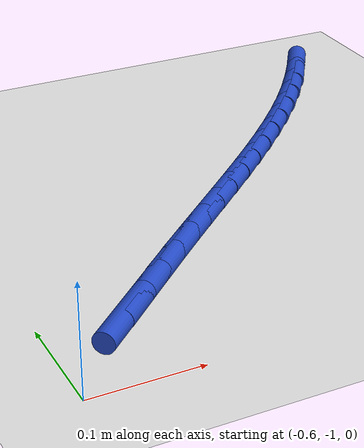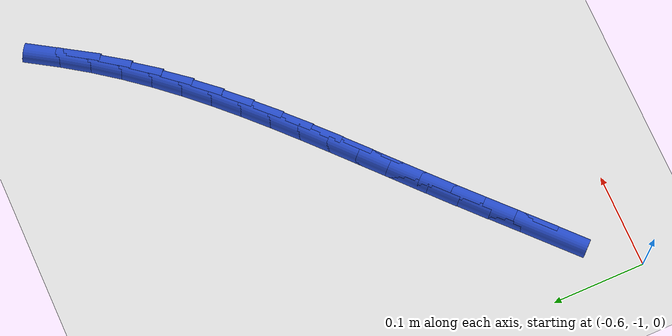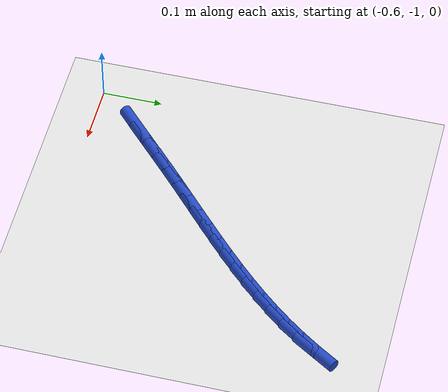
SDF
<sdf version="1.6">
 <world name="default">
  <model name="ground_plane">
   <static>1</static>
   <link name="link">
    <collision name="collision">
     <geometry><plane><normal>0 0 1</normal><size>100 100</size></plane></geometry>
     <surface><friction><ode><mu>100</mu><mu2>50</mu2></ode></friction></surface>
    </collision>
    <visual name="visual">
     <cast_shadows>0</cast_shadows>
     <geometry><plane><normal>0 0 1</normal><size>100 100</size></plane></geometry>
     <material>
      <script><uri>file://media/materials/scripts/gazebo.material</uri><name>Gazebo/WhiteGlow</name></script>
     </material>
    </visual>
   </link>
  </model>
  <model name="line">
   <link name="link_167">
    <pose>-0.5348209343322887 -0.9254664284667795 0.01 0 1.57 0.7490836819658321</pose>
    <collision name="collision">
     <geometry><cylinder><radius>0.01</radius><length>0.08</length></cylinder></geometry>
    </collision>
    <visual name="visual">
     <material>
      <script><name>Gazebo/Blue</name><uri>file://media/materials/scripts/gazebo.material</uri></script>
     </material>
     <geometry><cylinder><radius>0.01</radius><length>0.08</length></cylinder></geometry>
    </visual>
   </link>
   <link name="link_168">
    <pose>-0.5092169310591722 -0.9016576152022477 0.01 0 1.57 0.7542715134422914</pose>
    <collision name="collision">
     <geometry><cylinder><radius>0.01</radius><length>0.08</length></cylinder></geometry>
    </collision>
    <visual name="visual">
     <material>
      <script><name>Gazebo/Blue</name><uri>file://media/materials/scripts/gazebo.material</uri></script>
     </material>
     <geometry><cylinder><radius>0.01</radius><length>0.08</length></cylinder></geometry>
    </visual>
   </link>
   <link name="link_169">
    <pose>-0.4837454395667352 -0.8777244228453354 0.01 0 1.57 0.7525971178008607</pose>
    <collision name="collision">
     <geometry><cylinder><radius>0.01</radius><length>0.08</length></cylinder></geometry>
    </collision>
    <visual name="visual">
     <material>
      <script><name>Gazebo/Blue</name><uri>file://media/materials/scripts/gazebo.material</uri></script>
     </material>
     <geometry><cylinder><radius>0.01</radius><length>0.08</length></cylinder></geometry>
    </visual>
   </link>
   <link name="link_170">
    <pose>-0.45833566395932734 -0.8539292016604859 0.01 0 1.57 0.7447256982707042</pose>
    <collision name="collision">
     <geometry><cylinder><radius>0.01</radius><length>0.08</length></cylinder></geometry>
    </collision>
    <visual name="visual">
     <material>
      <script><name>Gazebo/Blue</name><uri>file://media/materials/scripts/gazebo.material</uri></script>
     </material>
     <geometry><cylinder><radius>0.01</radius><length>0.08</length></cylinder></geometry>
    </visual>
   </link>
   <link name="link_171">
    <pose>-0.43292766719529896 -0.830508292695694 0.01 0 1.57 0.7375657430360244</pose>
    <collision name="collision">
     <geometry><cylinder><radius>0.01</radius><length>0.08</length></cylinder></geometry>
    </collision>
    <visual name="visual">
     <material>
      <script><name>Gazebo/Blue</name><uri>file://media/materials/scripts/gazebo.material</uri></script>
     </material>
     <geometry><cylinder><radius>0.01</radius><length>0.08</length></cylinder></geometry>
    </visual>
   </link>
   <link name="link_172">
    <pose>-0.407561153902517 -0.8074593744522645 0.01 0 1.57 0.7349777353963726</pose>
    <collision name="collision">
     <geometry><cylinder><radius>0.01</radius><length>0.08</length></cylinder></geometry>
    </collision>
    <visual name="visual">
     <material>
      <script><name>Gazebo/Blue</name><uri>file://media/materials/scripts/gazebo.material</uri></script>
     </material>
     <geometry><cylinder><radius>0.01</radius><length>0.08</length></cylinder></geometry>
    </visual>
   </link>
   <link name="link_173">
    <pose>-0.38232939217979406 -0.7846518297651703 0.01 0 1.57 0.7371098211891665</pose>
    <collision name="collision">
     <geometry><cylinder><radius>0.01</radius><length>0.08</length></cylinder></geometry>
    </collision>
    <visual name="visual">
     <material>
      <script><name>Gazebo/Blue</name><uri>file://media/materials/scripts/gazebo.material</uri></script>
     </material>
     <geometry><cylinder><radius>0.01</radius><length>0.08</length></cylinder></geometry>
    </visual>
   </link>
   <link name="link_174">
    <pose>-0.3573261648328613 -0.7619538086391383 0.01 0 1.57 0.744060742261435</pose>
    <collision name="collision">
     <geometry><cylinder><radius>0.01</radius><length>0.08</length></cylinder></geometry>
    </collision>
    <visual name="visual">
     <material>
      <script><name>Gazebo/Blue</name><uri>file://media/materials/scripts/gazebo.material</uri></script>
     </material>
     <geometry><cylinder><radius>0.01</radius><length>0.08</length></cylinder></geometry>
    </visual>
   </link>
   <link name="link_175">
    <pose>-0.33264525466744943 -0.7392334610788942 0.01 0 1.57 0.7559135872494325</pose>
    <collision name="collision">
     <geometry><cylinder><radius>0.01</radius><length>0.08</length></cylinder></geometry>
    </collision>
    <visual name="visual">
     <material>
      <script><name>Gazebo/Blue</name><uri>file://media/materials/scripts/gazebo.material</uri></script>
     </material>
     <geometry><cylinder><radius>0.01</radius><length>0.08</length></cylinder></geometry>
    </visual>
   </link>
   <link name="link_176">
    <pose>-0.30838044448928975 -0.7163589370891641 0.01 0 1.57 0.7727297392176627</pose>
    <collision name="collision">
     <geometry><cylinder><radius>0.01</radius><length>0.08</length></cylinder></geometry>
    </collision>
    <visual name="visual">
     <material>
      <script><name>Gazebo/Blue</name><uri>file://media/materials/scripts/gazebo.material</uri></script>
     </material>
     <geometry><cylinder><radius>0.01</radius><length>0.08</length></cylinder></geometry>
    </visual>
   </link>
   <link name="link_177">
    <pose>-0.2846255171041134 -0.6931983866746743 0.01 0 1.57 0.7945391006280416</pose>
    <collision name="collision">
     <geometry><cylinder><radius>0.01</radius><length>0.08</length></cylinder></geometry>
    </collision>
    <visual name="visual">
     <material>
      <script><name>Gazebo/Blue</name><uri>file://media/materials/scripts/gazebo.material</uri></script>
     </material>
     <geometry><cylinder><radius>0.01</radius><length>0.08</length></cylinder></geometry>
    </visual>
   </link>
   <link name="link_178">
    <pose>-0.2614742553176511 -0.6696199598401508 0.01 0 1.57 0.8213266456626248</pose>
    <collision name="collision">
     <geometry><cylinder><radius>0.01</radius><length>0.08</length></cylinder></geometry>
    </collision>
    <visual name="visual">
     <material>
      <script><name>Gazebo/Blue</name><uri>file://media/materials/scripts/gazebo.material</uri></script>
     </material>
     <geometry><cylinder><radius>0.01</radius><length>0.08</length></cylinder></geometry>
    </visual>
   </link>
   <link name="link_179">
    <pose>-0.2390204419356343 -0.64549180659032 0.01 0 1.57 0.853015837064551</pose>
    <collision name="collision">
     <geometry><cylinder><radius>0.01</radius><length>0.08</length></cylinder></geometry>
    </collision>
    <visual name="visual">
     <material>
      <script><name>Gazebo/Blue</name><uri>file://media/materials/scripts/gazebo.material</uri></script>
     </material>
     <geometry><cylinder><radius>0.01</radius><length>0.08</length></cylinder></geometry>
    </visual>
   </link>
   <link name="link_180">
    <pose>-0.21735785976379388 -0.6206820769299081 0.01 0 1.57 0.8894501566443529</pose>
    <collision name="collision">
     <geometry><cylinder><radius>0.01</radius><length>0.08</length></cylinder></geometry>
    </collision>
    <visual name="visual">
     <material>
      <script><name>Gazebo/Blue</name><uri>file://media/materials/scripts/gazebo.material</uri></script>
     </material>
     <geometry><cylinder><radius>0.01</radius><length>0.08</length></cylinder></geometry>
    </visual>
   </link>
   <link name="link_181">
    <pose>-0.19658029160786084 -0.5950589208636409 0.01 0 1.57 0.9300087405967153</pose>
    <collision name="collision">
     <geometry><cylinder><radius>0.01</radius><length>0.08</length></cylinder></geometry>
    </collision>
    <visual name="visual">
     <material>
      <script><name>Gazebo/Blue</name><uri>file://media/materials/scripts/gazebo.material</uri></script>
     </material>
     <geometry><cylinder><radius>0.01</radius><length>0.08</length></cylinder></geometry>
    </visual>
   </link>
   <link name="link_182">
    <pose>-0.17677628112955765 -0.5685037571793885 0.01 0 1.57 0.9709808370515999</pose>
    <collision name="collision">
     <geometry><cylinder><radius>0.01</radius><length>0.08</length></cylinder></geometry>
    </collision>
    <visual name="visual">
     <material>
      <script><name>Gazebo/Blue</name><uri>file://media/materials/scripts/gazebo.material</uri></script>
     </material>
     <geometry><cylinder><radius>0.01</radius><length>0.08</length></cylinder></geometry>
    </visual>
   </link>
   <link name="link_183">
    <pose>-0.15798432554022193 -0.5410247535186836 0.01 0 1.57 1.0105106864775937</pose>
    <collision name="collision">
     <geometry><cylinder><radius>0.01</radius><length>0.08</length></cylinder></geometry>
    </collision>
    <visual name="visual">
     <material>
      <script><name>Gazebo/Blue</name><uri>file://media/materials/scripts/gazebo.material</uri></script>
     </material>
     <geometry><cylinder><radius>0.01</radius><length>0.08</length></cylinder></geometry>
    </visual>
   </link>
  </model>
 </world>
</sdf>
